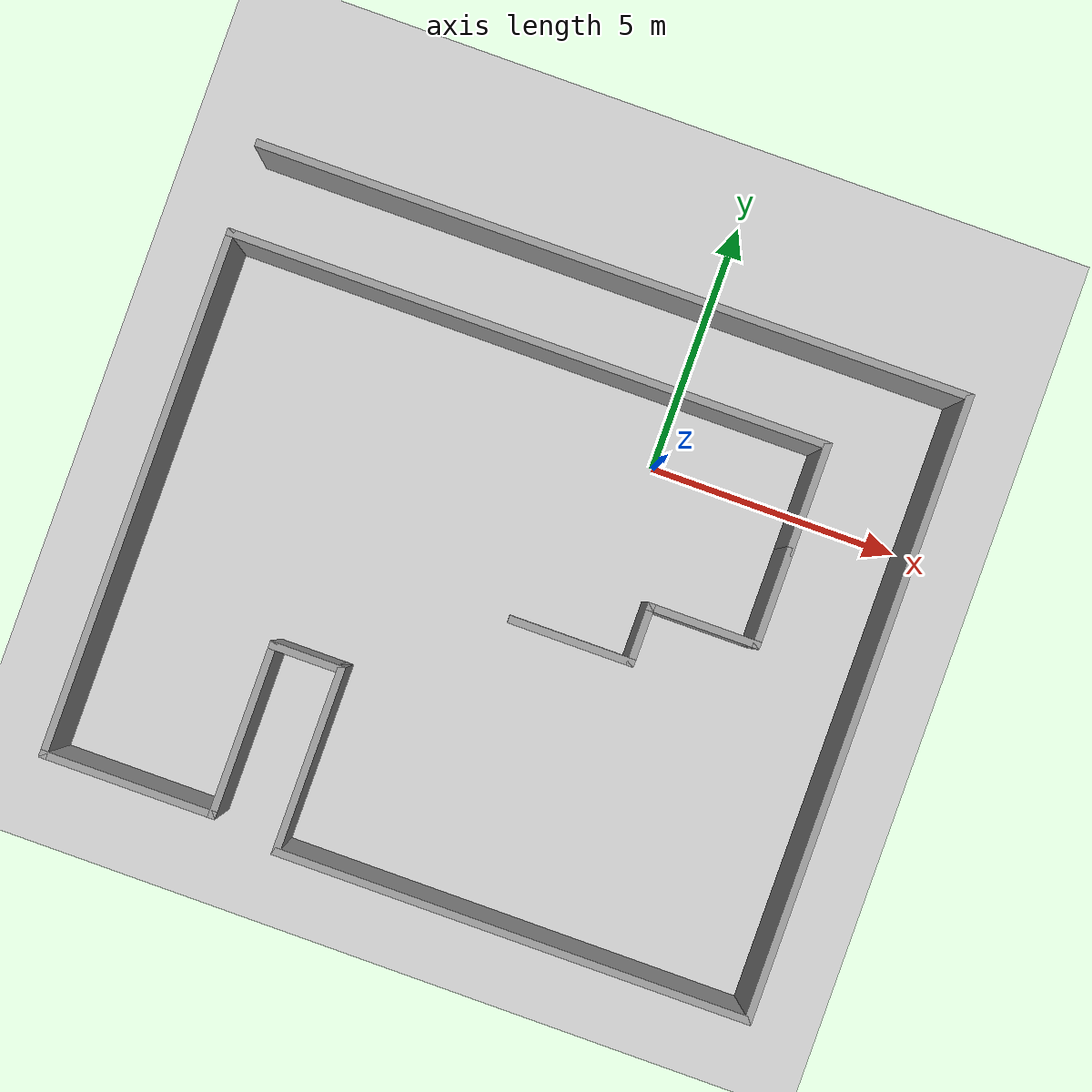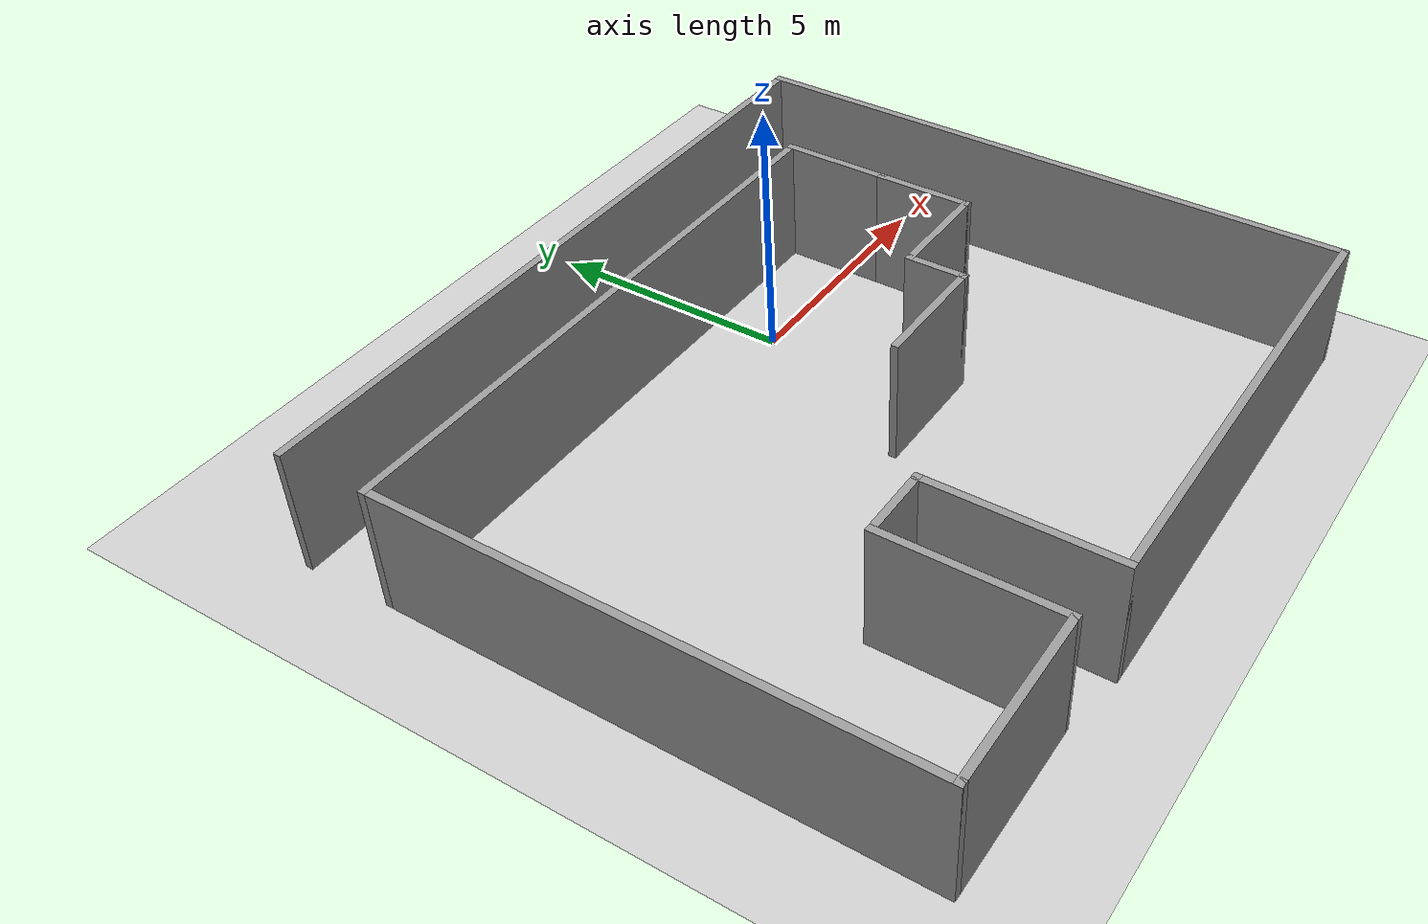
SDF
<sdf version="1.6">
 <world name="default">
  <light name="sun" type="directional">
   <pose>0 0 10 0 -0 0</pose>
   <diffuse>0.8 0.8 0.8 1</diffuse>
   <specular>0.1 0.1 0.1 1</specular>
   <attenuation>
    <range>1000</range>
    <constant>0.9</constant>
    <linear>0.01</linear>
    <quadratic>0.001</quadratic>
   </attenuation>
   <direction>-0.5 0.5 -1</direction>
  </light>
  <model name="ground_plane">
   <static>1</static>
   <link name="link">
    <collision name="collision">
     <geometry><plane><normal>0 0 1</normal><size>100 100</size></plane></geometry>
     <surface><friction><ode><mu>100</mu><mu2>50</mu2></ode></friction></surface>
    </collision>
    <visual name="visual">
     <cast_shadows>0</cast_shadows>
     <geometry><plane><normal>0 0 1</normal><size>100 100</size></plane></geometry>
     <material>
      <script><uri>file://media/materials/scripts/gazebo.material</uri><name>Gazebo/Grey</name></script>
     </material>
    </visual>
   </link>
  </model>
  <gravity>0 0 -9.8</gravity>
  <magnetic_field>6e-06 2.3e-05 -4.2e-05</magnetic_field>
  <atmosphere type="adiabatic"/>
  <physics name="default_physics" default="0" type="ode">
   <max_step_size>0.001</max_step_size>
   <real_time_factor>1</real_time_factor>
   <real_time_update_rate>1000</real_time_update_rate>
  </physics>
  <scene><ambient>0.4 0.4 0.4 1</ambient><background>0.7 0.7 0.7 1</background><shadows>1</shadows></scene>
  <spherical_coordinates>
   <surface_model>EARTH_WGS84</surface_model>
   <latitude_deg>0</latitude_deg>
   <longitude_deg>0</longitude_deg>
   <elevation>0</elevation>
   <heading_deg>0</heading_deg>
  </spherical_coordinates>
  <model name="Untitled">
   <pose>-2 -3.075 0 0 -0 0</pose>
   <link name="Wall_0">
    <collision name="Wall_0_Collision">
     <geometry><box><size>2.5 0.15 2.5</size></box></geometry>
     <pose>0 0 1.25 0 -0 0</pose>
    </collision>
    <visual name="Wall_0_Visual">
     <pose>0 0 1.25 0 -0 0</pose>
     <geometry><box><size>2.5 0.15 2.5</size></box></geometry>
     <material>
      <script><uri>file://media/materials/scripts/gazebo.material</uri><name>Gazebo/Grey</name></script>
      <ambient>1 1 1 1</ambient>
     </material>
    </visual>
    <pose>1.575 -0.625 0 0 -0 0</pose>
   </link>
   <link name="Wall_1">
    <collision name="Wall_1_Collision">
     <geometry><box><size>1.25 0.15 2.5</size></box></geometry>
     <pose>0 0 1.25 0 -0 0</pose>
    </collision>
    <visual name="Wall_1_Visual">
     <pose>0 0 1.25 0 -0 0</pose>
     <geometry><box><size>1.25 0.15 2.5</size></box></geometry>
     <material>
      <script><uri>file://media/materials/scripts/gazebo.material</uri><name>Gazebo/Grey</name></script>
      <ambient>1 1 1 1</ambient>
     </material>
    </visual>
    <pose>2.75 -0.075 0 0 -0 1.5708</pose>
   </link>
   <link name="Wall_10">
    <collision name="Wall_10_Collision">
     <geometry><box><size>3.75 0.15 2.5</size></box></geometry>
     <pose>0 0 1.25 0 -0 0</pose>
    </collision>
    <visual name="Wall_10_Visual">
     <pose>0 0 1.25 0 -0 0</pose>
     <geometry><box><size>3.75 0.15 2.5</size></box></geometry>
     <material>
      <script><uri>file://media/materials/scripts/gazebo.material</uri><name>Gazebo/Grey</name></script>
      <ambient>1 1 1 1</ambient>
     </material>
    </visual>
    <pose>-2.3 -4.375 0 0 0 -1.5708</pose>
   </link>
   <link name="Wall_11">
    <collision name="Wall_11_Collision">
     <geometry><box><size>9.5 0.15 2.5</size></box></geometry>
     <pose>0 0 1.25 0 -0 0</pose>
    </collision>
    <visual name="Wall_11_Visual">
     <pose>0 0 1.25 0 -0 0</pose>
     <geometry><box><size>9.5 0.15 2.5</size></box></geometry>
     <material>
      <script><uri>file://media/materials/scripts/gazebo.material</uri><name>Gazebo/Grey</name></script>
      <ambient>1 1 1 1</ambient>
     </material>
    </visual>
    <pose>2.375 -6.175 0 0 -0 0</pose>
   </link>
   <link name="Wall_12">
    <collision name="Wall_12_Collision">
     <geometry><box><size>12.5 0.15 2.5</size></box></geometry>
     <pose>0 0 1.25 0 -0 0</pose>
    </collision>
    <visual name="Wall_12_Visual">
     <pose>0 0 1.25 0 -0 0</pose>
     <geometry><box><size>12.5 0.15 2.5</size></box></geometry>
     <material>
      <script><uri>file://media/materials/scripts/gazebo.material</uri><name>Gazebo/Grey</name></script>
      <ambient>1 1 1 1</ambient>
     </material>
    </visual>
    <pose>7.05 0 0 0 -0 1.5708</pose>
   </link>
   <link name="Wall_13">
    <collision name="Wall_13_Collision">
     <geometry><box><size>14.25 0.15 2.5</size></box></geometry>
     <pose>0 0 1.25 0 -0 0</pose>
    </collision>
    <visual name="Wall_13_Visual">
     <pose>0 0 1.25 0 -0 0</pose>
     <geometry><box><size>14.25 0.15 2.5</size></box></geometry>
     <material>
      <script><uri>file://media/materials/scripts/gazebo.material</uri><name>Gazebo/Grey</name></script>
      <ambient>1 1 1 1</ambient>
     </material>
    </visual>
    <pose>0 6.175 0 0 -0 3.14159</pose>
   </link>
   <link name="Wall_2">
    <collision name="Wall_2_Collision">
     <geometry><box><size>2.25 0.15 2.5</size></box></geometry>
     <pose>0 0 1.25 0 -0 0</pose>
    </collision>
    <visual name="Wall_2_Visual">
     <pose>0 0 1.25 0 -0 0</pose>
     <geometry><box><size>2.25 0.15 2.5</size></box></geometry>
     <material>
      <script><uri>file://media/materials/scripts/gazebo.material</uri><name>Gazebo/Grey</name></script>
      <ambient>1 1 1 1</ambient>
     </material>
    </visual>
    <pose>3.8 0.475 0 0 -0 0</pose>
   </link>
   <link name="Wall_3">
    <collision name="Wall_3_Collision">
     <geometry><box><size>2 0.15 2.5</size></box></geometry>
     <pose>0 0 1.25 0 -0 0</pose>
    </collision>
    <visual name="Wall_3_Visual">
     <pose>0 0 1.25 0 -0 0</pose>
     <geometry><box><size>2 0.15 2.5</size></box></geometry>
     <material>
      <script><uri>file://media/materials/scripts/gazebo.material</uri><name>Gazebo/Grey</name></script>
      <ambient>1 1 1 1</ambient>
     </material>
    </visual>
    <pose>4.85 1.4 0 0 -0 1.5708</pose>
   </link>
   <link name="Wall_4">
    <collision name="Wall_4_Collision">
     <geometry><box><size>2.25 0.15 2.5</size></box></geometry>
     <pose>0 0 1.25 0 -0 0</pose>
    </collision>
    <visual name="Wall_4_Visual">
     <pose>0 0 1.25 0 -0 0</pose>
     <geometry><box><size>2.25 0.15 2.5</size></box></geometry>
     <material>
      <script><uri>file://media/materials/scripts/gazebo.material</uri><name>Gazebo/Grey</name></script>
      <ambient>1 1 1 1</ambient>
     </material>
    </visual>
    <pose>4.85 3.375 0 0 -0 1.5708</pose>
   </link>
   <link name="Wall_5">
    <collision name="Wall_5_Collision">
     <geometry><box><size>12 0.15 2.5</size></box></geometry>
     <pose>0 0 1.25 0 -0 0</pose>
    </collision>
    <visual name="Wall_5_Visual">
     <pose>0 0 1.25 0 -0 0</pose>
     <geometry><box><size>12 0.15 2.5</size></box></geometry>
     <material>
      <script><uri>file://media/materials/scripts/gazebo.material</uri><name>Gazebo/Grey</name></script>
      <ambient>1 1 1 1</ambient>
     </material>
    </visual>
    <pose>-1.075 4.425 0 0 -0 3.14159</pose>
   </link>
   <link name="Wall_6">
    <collision name="Wall_6_Collision">
     <geometry><box><size>10.5 0.15 2.5</size></box></geometry>
     <pose>0 0 1.25 0 -0 0</pose>
    </collision>
    <visual name="Wall_6_Visual">
     <pose>0 0 1.25 0 -0 0</pose>
     <geometry><box><size>10.5 0.15 2.5</size></box></geometry>
     <material>
      <script><uri>file://media/materials/scripts/gazebo.material</uri><name>Gazebo/Grey</name></script>
      <ambient>1 1 1 1</ambient>
     </material>
    </visual>
    <pose>-7 -0.75 0 0 0 -1.5708</pose>
   </link>
   <link name="Wall_7">
    <collision name="Wall_7_Collision">
     <geometry><box><size>3.5 0.15 2.5</size></box></geometry>
     <pose>0 0 1.25 0 -0 0</pose>
    </collision>
    <visual name="Wall_7_Visual">
     <pose>0 0 1.25 0 -0 0</pose>
     <geometry><box><size>3.5 0.15 2.5</size></box></geometry>
     <material>
      <script><uri>file://media/materials/scripts/gazebo.material</uri><name>Gazebo/Grey</name></script>
      <ambient>1 1 1 1</ambient>
     </material>
    </visual>
    <pose>-5.325 -5.925 0 0 -0 0</pose>
   </link>
   <link name="Wall_8">
    <collision name="Wall_8_Collision">
     <geometry><box><size>3.5 0.15 2.5</size></box></geometry>
     <pose>0 0 1.25 0 -0 0</pose>
    </collision>
    <visual name="Wall_8_Visual">
     <pose>0 0 1.25 0 -0 0</pose>
     <geometry><box><size>3.5 0.15 2.5</size></box></geometry>
     <material>
      <script><uri>file://media/materials/scripts/gazebo.material</uri><name>Gazebo/Grey</name></script>
      <ambient>1 1 1 1</ambient>
     </material>
    </visual>
    <pose>-3.65 -4.25 0 0 -0 1.5708</pose>
   </link>
   <link name="Wall_9">
    <collision name="Wall_9_Collision">
     <geometry><box><size>1.5 0.15 2.5</size></box></geometry>
     <pose>0 0 1.25 0 -0 0</pose>
    </collision>
    <visual name="Wall_9_Visual">
     <pose>0 0 1.25 0 -0 0</pose>
     <geometry><box><size>1.5 0.15 2.5</size></box></geometry>
     <material>
      <script><uri>file://media/materials/scripts/gazebo.material</uri><name>Gazebo/Grey</name></script>
      <ambient>1 1 1 1</ambient>
     </material>
    </visual>
    <pose>-2.975 -2.575 0 0 -0 0</pose>
   </link>
   <static>1</static>
  </model>
 </world>
</sdf>
